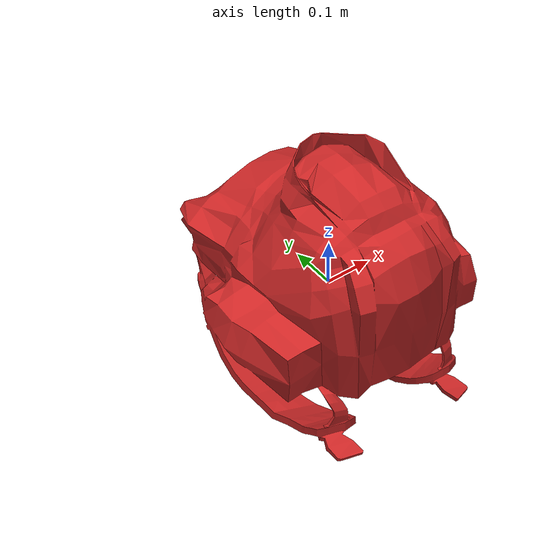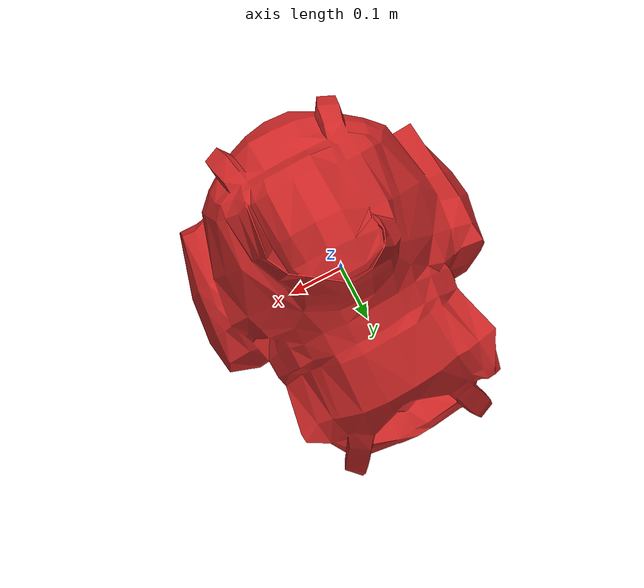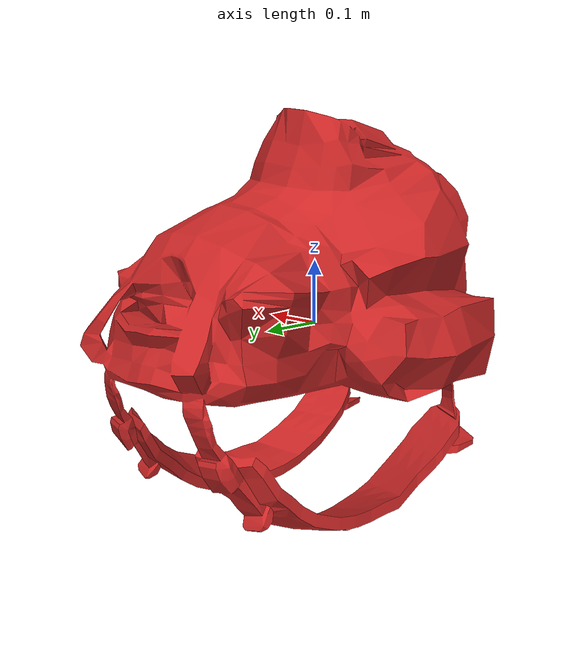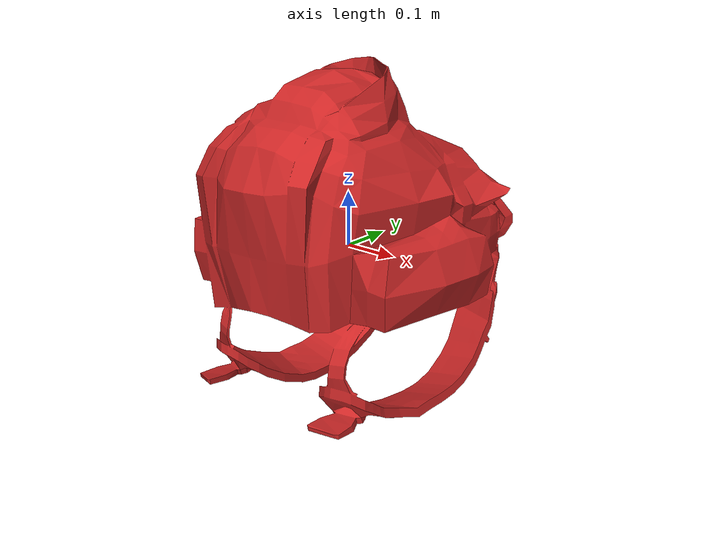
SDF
<?xml version="1.0" ?>
<sdf version="1.5">
  <model name="backpack">
    <static>false</static>
    <link name="link">
      <inertial>
        <mass>2.0</mass> <inertia>
          <ixx>0.05</ixx> <ixy>0</ixy> <ixz>0</ixz>
          <iyy>0.05</iyy> <iyz>0</iyz>
          <izz>0.05</izz>
        </inertia>
      </inertial>

      <collision name="collision">
        <geometry>
          <mesh>
            <uri>model://backpack/meshes/backpack.dae</uri>
          </mesh>
        </geometry>
      </collision>

      <visual name="visual">
        <geometry>
          <mesh>
            <uri>model://backpack/meshes/backpack.dae</uri>
          </mesh>
        </geometry>
        <material>
          <script>
            <uri>file://media/materials/scripts/gazebo.material</uri>
            <name>Gazebo/Red</name>
          </script>
        </material>
      </visual>
    </link>
  </model>
</sdf>
